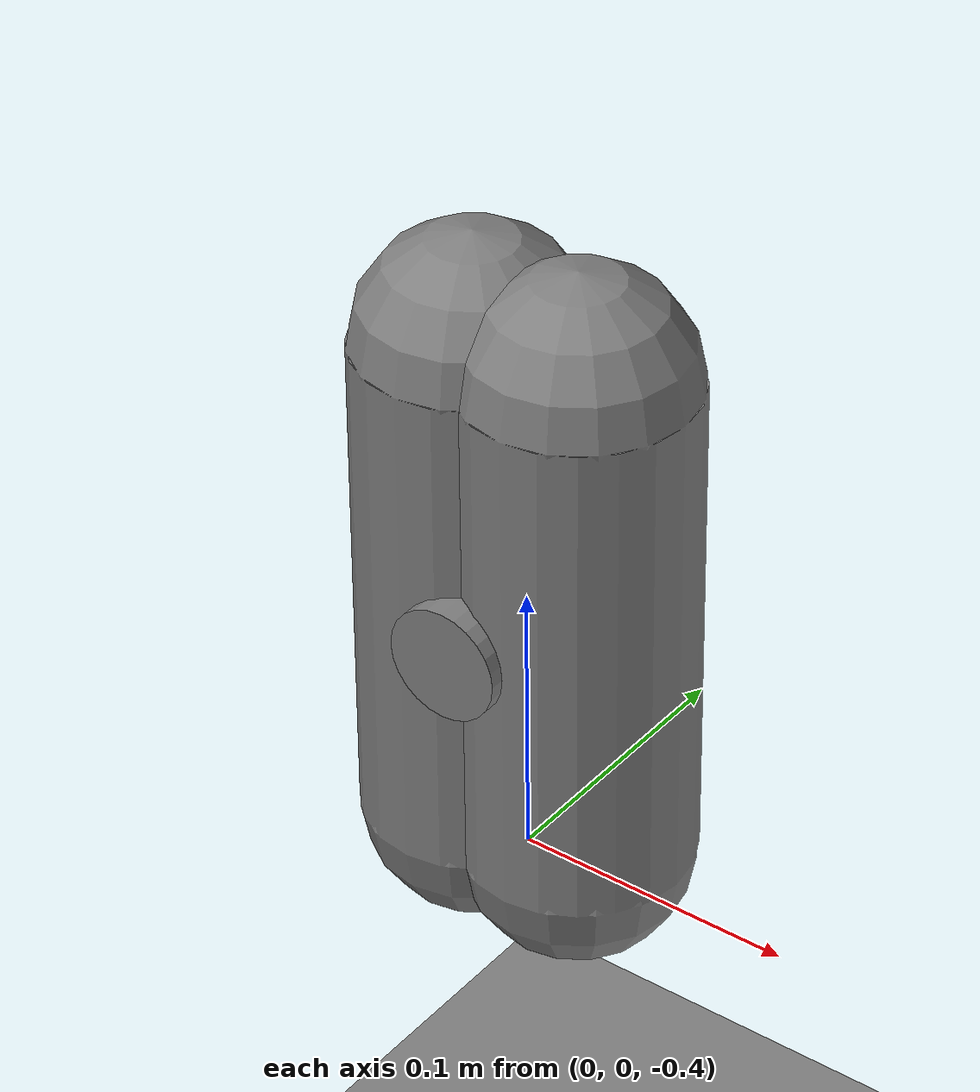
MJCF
<mujoco model="finger">
  <custom>
    <numeric data="0.0" name="init_qpos"/>
  </custom>

  <compiler inertiafromgeom="true" angle="degree"/>

  <option timestep="0.01" collision="all"/>

    <worldbody>
        <light name="light" directional="true" diffuse=".6 .6 .6" pos="0 0 2" specular=".3 .3 .3"/>
        <geom name="ground" type="plane" pos="0 0 -0.6" size=".6 .2 10"  solimp="0 0.9 0.01" solref=".02 1"/>
        <camera name="cam0" pos="0 -1 .8" xyaxes="1 0 0 0 1 2"/>
        <camera name="cam1" pos="0 -1 .4" xyaxes="1 0 0 0 0 1" />

        <body name="spinner_root">
            <body name="spinner" pos="0 0 -.3">
                <joint name="spinner_joint" type="hinge" axis="0 -1 0" range="-50 50" frictionloss=".01" damping=".35" limited="false" />
                <geom name="cap1" type="capsule" size=".04 .09" pos=".02 0 0" solimp="0 0.9 0.01" solref=".02 1" condim="1"/>
                <geom name="cap2" type="capsule" size=".04 .09" pos="-.02 0 0" solimp="0 0.9 0.01" solref=".02 1" condim="1"/>
                <geom name="spinner_decoration" type="cylinder" fromto="0 -.045 0 0 .045 0" size=".02" solimp="0 0.9 0.01" solref=".02 1" condim="1"/>
            </body>
        </body>
    </worldbody>
</mujoco>
